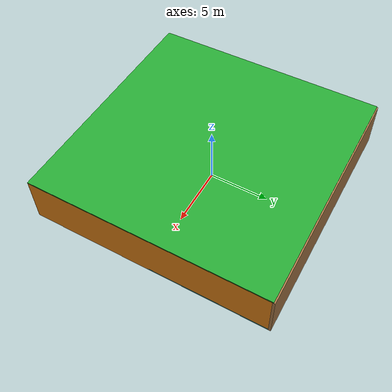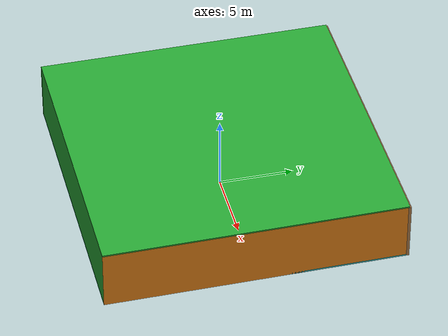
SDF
<sdf version="1.4">
 <world name="default">
  <physics type="ode">
   <max_step_size>0.001</max_step_size>
   <real_time_factor>1</real_time_factor>
   <real_time_update_rate>1000</real_time_update_rate>
   <gravity>0 0 -9.8</gravity>
  </physics>
  <scene><ambient>0.4 0.4 0.4 1</ambient><background>0.7 0.7 0.7 1</background><shadows>1</shadows></scene>
  <model name="Surrounding">
   <static>1</static>
   <link name="Ceiling">
    <collision name="Ceiling_Collision"><geometry><box><size>20 20 0.1</size></box></geometry></collision>
    <visual name="Ceiling_Visual">
     <geometry><box><size>20 20 0.1</size></box></geometry>
     <material>
      <script><uri>file://media/materials/scripts/gazebo.material</uri><name>Gazebo/GreenGlow</name></script>
     </material>
    </visual>
    <pose>0 0 4.05 0 0 0</pose>
   </link>
   <link name="Wall_South">
    <collision name="Wall_South_Collision">
     <geometry><box><size>20 0 4</size></box></geometry>
     <pose>0 0 2 0 -0 0</pose>
    </collision>
    <visual name="Wall_South_Visual">
     <pose>0 0 2 0 -0 0</pose>
     <geometry><box><size>20 0 4</size></box></geometry>
     <material>
      <script><uri>file://media/materials/scripts/gazebo.material</uri><name>Gazebo/Green</name></script>
     </material>
    </visual>
    <velocity_decay><linear>0</linear><angular>0</angular></velocity_decay>
    <pose>0 -10 0 0 -0 0</pose>
   </link>
   <link name="Wall_East">
    <collision name="Wall_21_Collision">
     <geometry><box><size>20 0 4</size></box></geometry>
     <pose>0 0 2 0 -0 0</pose>
    </collision>
    <visual name="Wall_21_Visual">
     <pose>0 0 2 0 -0 0</pose>
     <geometry><box><size>20 0 4</size></box></geometry>
     <material>
      <script><uri>file://media/materials/scripts/gazebo.material</uri><name>Gazebo/Orange</name></script>
     </material>
    </visual>
    <velocity_decay><linear>0</linear><angular>0</angular></velocity_decay>
    <pose>10 0 0 0 -0 1.5708</pose>
   </link>
   <link name="Wall_North">
    <collision name="Wall_22_Collision">
     <geometry><box><size>20 0.2 4</size></box></geometry>
     <pose>0 0 2 0 -0 0</pose>
    </collision>
    <visual name="Wall_22_Visual">
     <pose>0 0 2 0 -0 0</pose>
     <geometry><box><size>20 0.2 4</size></box></geometry>
     <material>
      <script><uri>file://media/materials/scripts/gazebo.material</uri><name>Gazebo/Wood</name></script>
     </material>
    </visual>
    <velocity_decay><linear>0</linear><angular>0</angular></velocity_decay>
    <pose>0 10 0 0 -0 0</pose>
   </link>
   <link name="Wall_West">
    <collision name="Wall_23_Collision">
     <geometry><box><size>20 0.2 4</size></box></geometry>
     <pose>0 0 2 0 -0 0</pose>
    </collision>
    <visual name="Wall_23_Visual">
     <pose>0 0 2 0 -0 0</pose>
     <geometry><box><size>20 0.2 4</size></box></geometry>
     <material>
      <script><uri>file://media/materials/scripts/gazebo.material</uri><name>Gazebo/Green</name></script>
     </material>
    </visual>
    <velocity_decay><linear>0</linear><angular>0</angular></velocity_decay>
    <pose>-10 0 0 0 0 -1.5708</pose>
   </link>
   <link name="Ground_link">
    <collision name="collision">
     <pose>0 0 .05 0 -0 0</pose>
     <geometry><box><size>20 20 0.1</size></box></geometry>
    </collision>
    <visual name="visual">
     <pose>0 0 .05 0 -0 0</pose>
     <geometry><box><size>20 20 0.1</size></box></geometry>
     <material>
      <script>
       <uri>file://media/materials/scripts/gazebo.material</uri>
       <name>Gazebo/TurquoiseGlowOutline</name>
      </script>
     </material>
    </visual>
   </link>
   <static>1</static>
  </model>
  <spherical_coordinates>
   <surface_model>EARTH_WGS84</surface_model>
   <latitude_deg>0</latitude_deg>
   <longitude_deg>0</longitude_deg>
   <elevation>0</elevation>
   <heading_deg>0</heading_deg>
  </spherical_coordinates>
  <light name="lightball_0" type="diffuse">
   <diffuse>0.8 0.8 0.8 1</diffuse>
   <specular>0.2 0.2 0.2 1</specular>
   <attenuation>
    <range>100</range>
    <constant>0.7</constant>
    <linear>0.01</linear>
    <quadratic>0.001</quadratic>
   </attenuation>
   <direction>-0.5 0.1 -0.9</direction>
   <pose>-4.01832412737 -7.65920253383 3.77028458744 0 0 0</pose>
  </light>
  <light name="lightball_1" type="diffuse">
   <diffuse>0.8 0.8 0.8 1</diffuse>
   <specular>0.2 0.2 0.2 1</specular>
   <attenuation>
    <range>100</range>
    <constant>0.7</constant>
    <linear>0.01</linear>
    <quadratic>0.001</quadratic>
   </attenuation>
   <direction>-0.5 0.1 -0.9</direction>
   <pose>5.1208454028 -5.80193414432 2.66476295695 0 0 0</pose>
  </light>
  <light name="lightball_2" type="diffuse">
   <diffuse>0.8 0.8 0.8 1</diffuse>
   <specular>0.2 0.2 0.2 1</specular>
   <attenuation>
    <range>100</range>
    <constant>0.7</constant>
    <linear>0.01</linear>
    <quadratic>0.001</quadratic>
   </attenuation>
   <direction>-0.5 0.1 -0.9</direction>
   <pose>-3.9509896538 -6.81001810487 2.50506876862 0 0 0</pose>
  </light>
  <light name="lightball_3" type="diffuse">
   <diffuse>0.8 0.8 0.8 1</diffuse>
   <specular>0.2 0.2 0.2 1</specular>
   <attenuation>
    <range>100</range>
    <constant>0.7</constant>
    <linear>0.01</linear>
    <quadratic>0.001</quadratic>
   </attenuation>
   <direction>-0.5 0.1 -0.9</direction>
   <pose>8.54242862698 -1.28427045866 2.31247608063 0 0 0</pose>
  </light>
  <light name="lightball_4" type="diffuse">
   <diffuse>0.8 0.8 0.8 1</diffuse>
   <specular>0.2 0.2 0.2 1</specular>
   <attenuation>
    <range>100</range>
    <constant>0.7</constant>
    <linear>0.01</linear>
    <quadratic>0.001</quadratic>
   </attenuation>
   <direction>-0.5 0.1 -0.9</direction>
   <pose>-8.55099941046 -3.47343701138 3.46920735069 0 0 0</pose>
  </light>
  <light name="lightball_5" type="diffuse">
   <diffuse>0.8 0.8 0.8 1</diffuse>
   <specular>0.2 0.2 0.2 1</specular>
   <attenuation>
    <range>100</range>
    <constant>0.7</constant>
    <linear>0.01</linear>
    <quadratic>0.001</quadratic>
   </attenuation>
   <direction>-0.5 0.1 -0.9</direction>
   <pose>5.35478758246 1.43116545315 1.54173946719 0 0 0</pose>
  </light>
  <light name="lightball_6" type="diffuse">
   <diffuse>0.8 0.8 0.8 1</diffuse>
   <specular>0.2 0.2 0.2 1</specular>
   <attenuation>
    <range>100</range>
    <constant>0.7</constant>
    <linear>0.01</linear>
    <quadratic>0.001</quadratic>
   </attenuation>
   <direction>-0.5 0.1 -0.9</direction>
   <pose>-2.76288507515 -0.0929976482923 1.96195558395 0 0 0</pose>
  </light>
  <light name="lightball_7" type="diffuse">
   <diffuse>0.8 0.8 0.8 1</diffuse>
   <specular>0.2 0.2 0.2 1</specular>
   <attenuation>
    <range>100</range>
    <constant>0.7</constant>
    <linear>0.01</linear>
    <quadratic>0.001</quadratic>
   </attenuation>
   <direction>-0.5 0.1 -0.9</direction>
   <pose>7.33570969964 -6.47842977772 2.03661317986 0 0 0</pose>
  </light>
  <light name="lightball_8" type="diffuse">
   <diffuse>0.8 0.8 0.8 1</diffuse>
   <specular>0.2 0.2 0.2 1</specular>
   <attenuation>
    <range>100</range>
    <constant>0.7</constant>
    <linear>0.01</linear>
    <quadratic>0.001</quadratic>
   </attenuation>
   <direction>-0.5 0.1 -0.9</direction>
   <pose>-5.48108218592 6.91244830733 1.75510015845 0 0 0</pose>
  </light>
  <light name="lightball_9" type="diffuse">
   <diffuse>0.8 0.8 0.8 1</diffuse>
   <specular>0.2 0.2 0.2 1</specular>
   <attenuation>
    <range>100</range>
    <constant>0.7</constant>
    <linear>0.01</linear>
    <quadratic>0.001</quadratic>
   </attenuation>
   <direction>-0.5 0.1 -0.9</direction>
   <pose>-7.23584791212 -0.304385917274 2.17804833588 0 0 0</pose>
  </light>
  <light name="lightball_10" type="diffuse">
   <diffuse>0.8 0.8 0.8 1</diffuse>
   <specular>0.2 0.2 0.2 1</specular>
   <attenuation>
    <range>100</range>
    <constant>0.7</constant>
    <linear>0.01</linear>
    <quadratic>0.001</quadratic>
   </attenuation>
   <direction>-0.5 0.1 -0.9</direction>
   <pose>-6.92586860752 -6.75349236656 2.57525525762 0 0 0</pose>
  </light>
  <light name="lightball_11" type="diffuse">
   <diffuse>0.8 0.8 0.8 1</diffuse>
   <specular>0.2 0.2 0.2 1</specular>
   <attenuation>
    <range>100</range>
    <constant>0.7</constant>
    <linear>0.01</linear>
    <quadratic>0.001</quadratic>
   </attenuation>
   <direction>-0.5 0.1 -0.9</direction>
   <pose>7.01877797436 -1.96522054291 0.574202435972 0 0 0</pose>
  </light>
  <include><uri>model://cabinet</uri><pose>-7.58168067961 4.64269723263 0 0 0 1.91019149746</pose></include>
  <include><uri>model://table</uri><pose>-8.09676723014 6.99146162823 0 0 0 1.61080527556</pose></include>
  <include><uri>model://cabinet</uri><pose>-3.86927216754 -7.70434961335 0 0 0 0.367082881422</pose></include>
  <include><uri>model://cabinet</uri><pose>-4.0497628387 1.51144807955 0 0 0 1.70561493124</pose></include>
  <include>
   <uri>model://construction_cone</uri>
   <pose>-5.07324374238 7.62908152194 0 0 0 2.08810168609</pose>
  </include>
  <include><uri>model://cabinet</uri><pose>-1.29587399876 1.68468300011 0 0 0 2.05557530363</pose></include>
  <include><uri>model://cabinet</uri><pose>-1.62928873532 4.76031277128 0 0 0 3.01263956752</pose></include>
  <include>
   <uri>model://construction_cone</uri>
   <pose>7.74995272707 4.77465446618 0 0 0 2.8381813308</pose>
  </include>
 </world>
</sdf>

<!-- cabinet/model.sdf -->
<sdf version="1.5">
  <model name="cabinet">
    <static>true</static>
    <link name="cabinet_bottom_plate">
      <inertial>
        <pose>0 0 -1 0 0 0</pose>
        <inertia>
          <ixx>2.050000</ixx>
          <ixy>0</ixy>
          <ixz>0</ixz>
          <iyy>2.050000</iyy>
          <iyz>0</iyz>
          <izz>2.050000</izz>
        </inertia>
        <mass>25.000000</mass>
      </inertial>
      <collision name="cabinet_bottom_plate_geom">
        <pose>0 0 0.010000 0 0 0</pose>
        <geometry>
          <box>
            <size>0.450000 0.450000 0.020000</size>
          </box>
        </geometry>
      </collision>
      <visual name="cabinet_bottom_plate_geom_visual">
        <pose>0 0 0.010000 0 0 0</pose>
        <geometry>
          <box>
            <size>0.450000 0.450000 0.020000</size>
          </box>
        </geometry>
        <material>
          <script>
            <uri>model://media/materials/scripts/gazebo.material</uri>
            <name>Gazebo/Wood</name>
          </script>
        </material>
      </visual>
      <collision name="cabinet_bottom_plate_geom_cabinet_back_plate">
        <pose>0.235000 0 0.510000 0 0 0</pose>
        <geometry>
          <box>
            <size>0.020000 0.450000 1.020000</size>
          </box>
        </geometry>
      </collision>
      <visual name="cabinet_bottom_plate_geom_cabinet_back_plate_visual">
        <pose>0.235000 0 0.510000 0 0 0</pose>
        <geometry>
          <box>
            <size>0.020000 0.450000 1.020000</size>
          </box>
        </geometry>
        <material>
          <script>
            <uri>model://media/materials/scripts/gazebo.material</uri>
            <name>Gazebo/Wood</name>
          </script>
        </material>
      </visual>
      <collision name="cabinet_bottom_plate_geom_cabinet_left_plate">
        <pose>0 0.235000 0.510000 0 0 0</pose>
        <geometry>
          <box>
            <size>0.450000 0.020000 1.020000</size>
          </box>
        </geometry>
      </collision>
      <visual name="cabinet_bottom_plate_geom_cabinet_left_plate_visual">
        <pose>0 0.235000 0.510000 0 0 0</pose>
        <geometry>
          <box>
            <size>0.450000 0.020000 1.020000</size>
          </box>
        </geometry>
        <material>
          <script>
            <uri>model://media/materials/scripts/gazebo.material</uri>
            <name>Gazebo/Wood</name>
          </script>
        </material>
      </visual>
      <collision name="cabinet_bottom_plate_geom_cabinet_middle_plate">
        <pose>0 0 0.510000 0 0 0</pose>
        <geometry>
          <box>
            <size>0.450000 0.450000 0.020000</size>
          </box>
        </geometry>
      </collision>
      <visual name="cabinet_bottom_plate_geom_cabinet_middle_plate_visual">
        <pose>0 0 0.510000 0 0 0</pose>
        <geometry>
          <box>
            <size>0.450000 0.450000 0.020000</size>
          </box>
        </geometry>
        <material>
          <script>
            <uri>model://media/materials/scripts/gazebo.material</uri>
            <name>Gazebo/Wood</name>
          </script>
        </material>
      </visual>
      <collision name="cabinet_bottom_plate_geom_cabinet_right_plate">
        <pose>0 -0.235000 0.510000 0 0 0</pose>
        <geometry>
          <box>
            <size>0.450000 0.020000 1.020000</size>
          </box>
        </geometry>
      </collision>
      <visual name="cabinet_bottom_plate_geom_cabinet_right_plate_visual">
        <pose>0 -0.235000 0.510000 0 0 0</pose>
        <geometry>
          <box>
            <size>0.450000 0.020000 1.020000</size>
          </box>
        </geometry>
        <material>
          <script>
            <uri>model://media/materials/scripts/gazebo.material</uri>
            <name>Gazebo/Wood</name>
          </script>
        </material>
      </visual>
      <collision name="cabinet_bottom_plate_geom_cabinet_top_plate">
        <pose>0 0 1.010000 0 0 0</pose>
        <geometry>
          <box>
            <size>0.450000 0.450000 0.020000</size>
          </box>
        </geometry>
      </collision>
      <visual name="cabinet_bottom_plate_geom_cabinet_top_plate_visual">
        <pose>0 0 1.010000 0 0 0</pose>
        <geometry>
          <box>
            <size>0.450000 0.450000 0.020000</size>
          </box>
        </geometry>
        <material>
          <script>
            <uri>model://media/materials/scripts/gazebo.material</uri>
            <name>Gazebo/Wood</name>
          </script>
        </material>
      </visual>
    </link>
  </model>
</sdf>

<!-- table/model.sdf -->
<sdf version="1.5">
  <model name="table">
    <static>true</static>
    <link name="link">
      <collision name="surface">
        <pose>0 0 1.0 0 0 0</pose>
        <geometry>
          <box>
            <size>1.5 0.8 0.03</size>
          </box>
        </geometry>
        <surface>
          <friction>
            <ode>
              <mu>0.6</mu>
              <mu2>0.6</mu2>
            </ode>
          </friction>
        </surface>
      </collision>
      <visual name="visual1">
        <pose>0 0 1.0 0 0 0</pose>
        <geometry>
          <box>
            <size>1.5 0.8 0.03</size>
          </box>
        </geometry>
        <material>
          <script>
            <uri>model://media/materials/scripts/gazebo.material</uri>
            <name>Gazebo/Wood</name>
          </script>
        </material>
      </visual>
      <collision name="front_left_leg">
        <pose>0.68 0.38 0.5 0 0 0</pose>
        <geometry>
          <cylinder>
            <radius>0.02</radius>
            <length>1.0</length>
          </cylinder>
        </geometry>
      </collision>
      <visual name="front_left_leg">
        <pose>0.68 0.38 0.5 0 0 0</pose>
        <geometry>
          <cylinder>
            <radius>0.02</radius>
            <length>1.0</length>
          </cylinder>
        </geometry>
        <material>
          <script>
            <uri>model://media/materials/scripts/gazebo.material</uri>
            <name>Gazebo/Grey</name>
          </script>
        </material>
      </visual>
      <collision name="front_right_leg">
        <pose>0.68 -0.38 0.5 0 0 0</pose>
        <geometry>
          <cylinder>
            <radius>0.02</radius>
            <length>1.0</length>
          </cylinder>
        </geometry>
      </collision>
      <visual name="front_right_leg">
        <pose>0.68 -0.38 0.5 0 0 0</pose>
        <geometry>
          <cylinder>
            <radius>0.02</radius>
            <length>1.0</length>
          </cylinder>
        </geometry>
        <material>
          <script>
            <uri>model://media/materials/scripts/gazebo.material</uri>
            <name>Gazebo/Grey</name>
          </script>
        </material>
      </visual>
      <collision name="back_right_leg">
        <pose>-0.68 -0.38 0.5 0 0 0</pose>
        <geometry>
          <cylinder>
            <radius>0.02</radius>
            <length>1.0</length>
          </cylinder>
        </geometry>
      </collision>
      <visual name="back_right_leg">
        <pose>-0.68 -0.38 0.5 0 0 0</pose>
        <geometry>
          <cylinder>
            <radius>0.02</radius>
            <length>1.0</length>
          </cylinder>
        </geometry>
        <material>
          <script>
            <uri>model://media/materials/scripts/gazebo.material</uri>
            <name>Gazebo/Grey</name>
          </script>
        </material>
      </visual>
      <collision name="back_left_leg">
        <pose>-0.68 0.38 0.5 0 0 0</pose>
        <geometry>
          <cylinder>
            <radius>0.02</radius>
            <length>1.0</length>
          </cylinder>
        </geometry>
      </collision>
      <visual name="back_left_leg">
        <pose>-0.68 0.38 0.5 0 0 0</pose>
        <geometry>
          <cylinder>
            <radius>0.02</radius>
            <length>1.0</length>
          </cylinder>
        </geometry>
        <material>
          <script>
            <uri>model://media/materials/scripts/gazebo.material</uri>
            <name>Gazebo/Grey</name>
          </script>
        </material>
      </visual>
    </link>
  </model>
</sdf>

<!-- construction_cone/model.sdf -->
<sdf version="1.5">
  <model name="Construction Cone">
    <link name="link">
      <collision name="collision">
        <geometry>
          <mesh>
            <scale>10 10 10</scale>
            <uri>file://isr-testbed/construction_cone/meshes/construction_cone.dae</uri>
          </mesh>
        </geometry>
      </collision>
      <visual name="visual">
        <geometry>
          <mesh>
            <scale>10 10 10</scale>
            <uri>file://isr-testbed/construction_cone/meshes/construction_cone.dae</uri>
          </mesh>
        </geometry>
      </visual>
    </link>
  </model>
</sdf>
